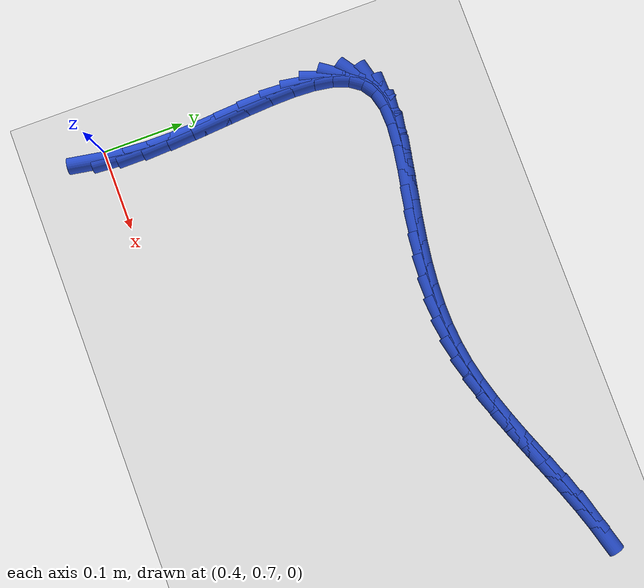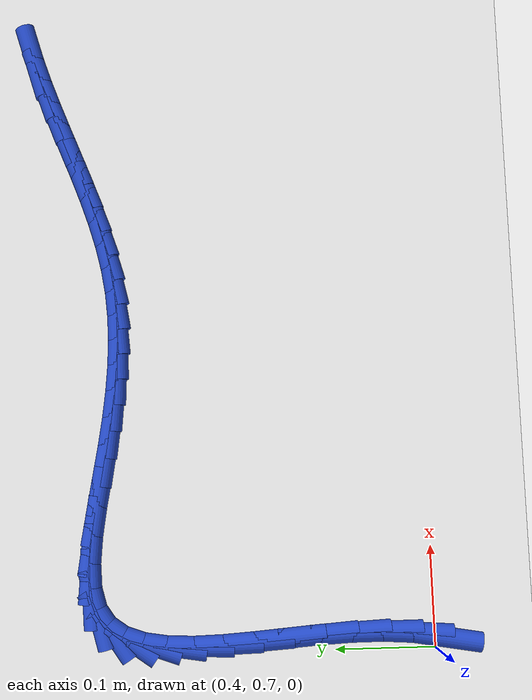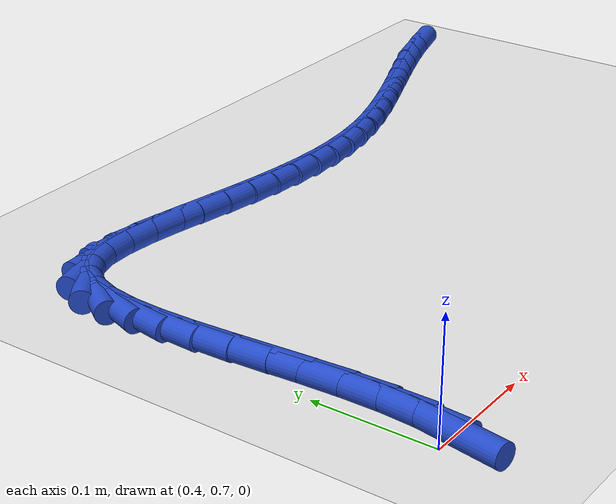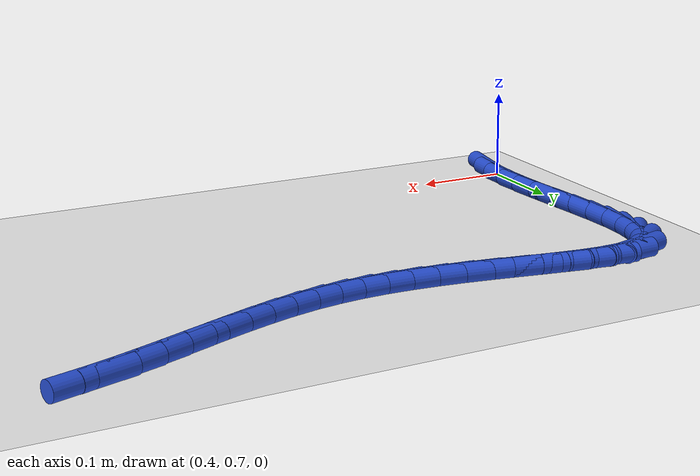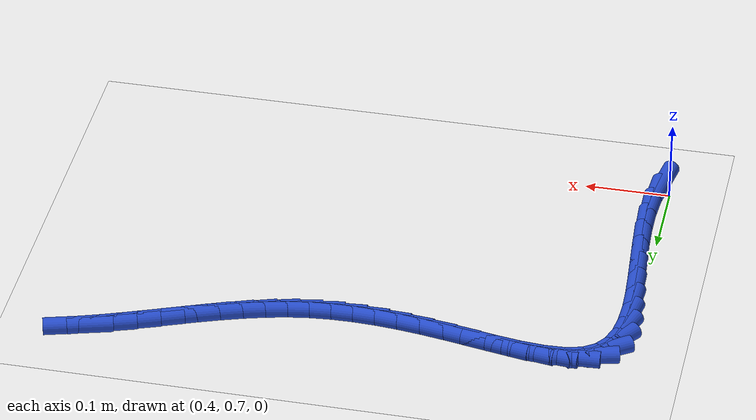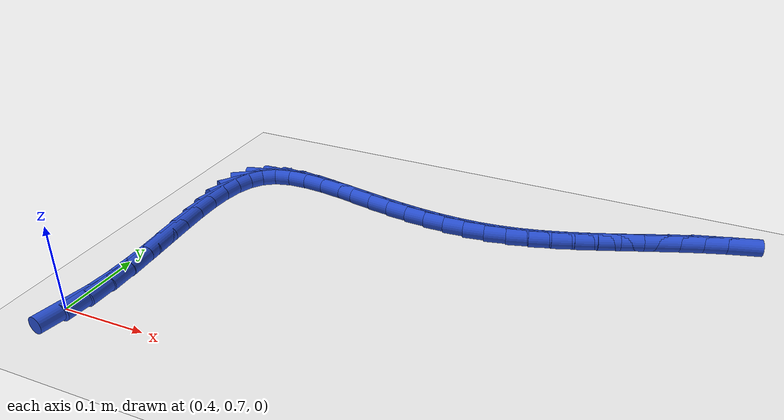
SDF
<sdf version="1.6">
 <world name="default">
  <model name="ground_plane">
   <static>1</static>
   <link name="link">
    <collision name="collision">
     <geometry><plane><normal>0 0 1</normal><size>100 100</size></plane></geometry>
     <surface><friction><ode><mu>100</mu><mu2>50</mu2></ode></friction></surface>
    </collision>
    <visual name="visual">
     <cast_shadows>0</cast_shadows>
     <geometry><plane><normal>0 0 1</normal><size>100 100</size></plane></geometry>
     <material>
      <script><uri>file://media/materials/scripts/gazebo.material</uri><name>Gazebo/WhiteGlow</name></script>
     </material>
    </visual>
   </link>
  </model>
  <model name="line">
   <link name="link_32">
    <pose>0.4114242190296432 0.6948658237087181 0.01 0 1.57 1.4047687014745058</pose>
    <collision name="collision">
     <geometry><cylinder><radius>0.01</radius><length>0.08</length></cylinder></geometry>
    </collision>
    <visual name="visual">
     <material>
      <script><name>Gazebo/Blue</name><uri>file://media/materials/scripts/gazebo.material</uri></script>
     </material>
     <geometry><cylinder><radius>0.01</radius><length>0.08</length></cylinder></geometry>
    </visual>
   </link>
   <link name="link_33">
    <pose>0.41614130437089386 0.723015735806926 0.01 0 1.57 1.5069587871187897</pose>
    <collision name="collision">
     <geometry><cylinder><radius>0.01</radius><length>0.08</length></cylinder></geometry>
    </collision>
    <visual name="visual">
     <material>
      <script><name>Gazebo/Blue</name><uri>file://media/materials/scripts/gazebo.material</uri></script>
     </material>
     <geometry><cylinder><radius>0.01</radius><length>0.08</length></cylinder></geometry>
    </visual>
   </link>
   <link name="link_34">
    <pose>0.41806778920462034 0.7531526611180042 0.01 0 1.57 -1.5646239149254952</pose>
    <collision name="collision">
     <geometry><cylinder><radius>0.01</radius><length>0.08</length></cylinder></geometry>
    </collision>
    <visual name="visual">
     <material>
      <script><name>Gazebo/Blue</name><uri>file://media/materials/scripts/gazebo.material</uri></script>
     </material>
     <geometry><cylinder><radius>0.01</radius><length>0.08</length></cylinder></geometry>
    </visual>
   </link>
   <link name="link_35">
    <pose>0.4178733920678791 0.7846467791533396 0.01 0 1.57 -1.5197703762544845</pose>
    <collision name="collision">
     <geometry><cylinder><radius>0.01</radius><length>0.08</length></cylinder></geometry>
    </collision>
    <visual name="visual">
     <material>
      <script><name>Gazebo/Blue</name><uri>file://media/materials/scripts/gazebo.material</uri></script>
     </material>
     <geometry><cylinder><radius>0.01</radius><length>0.08</length></cylinder></geometry>
    </visual>
   </link>
   <link name="link_36">
    <pose>0.41622783149772635 0.8168682694243189 0.01 0 1.57 -1.495841795573981</pose>
    <collision name="collision">
     <geometry><cylinder><radius>0.01</radius><length>0.08</length></cylinder></geometry>
    </collision>
    <visual name="visual">
     <material>
      <script><name>Gazebo/Blue</name><uri>file://media/materials/scripts/gazebo.material</uri></script>
     </material>
     <geometry><cylinder><radius>0.01</radius><length>0.08</length></cylinder></geometry>
    </visual>
   </link>
   <link name="link_37">
    <pose>0.41380082603121865 0.8491873114423301 0.01 0 1.57 -1.4910979463703196</pose>
    <collision name="collision">
     <geometry><cylinder><radius>0.01</radius><length>0.08</length></cylinder></geometry>
    </collision>
    <visual name="visual">
     <material>
      <script><name>Gazebo/Blue</name><uri>file://media/materials/scripts/gazebo.material</uri></script>
     </material>
     <geometry><cylinder><radius>0.01</radius><length>0.08</length></cylinder></geometry>
    </visual>
   </link>
   <link name="link_38">
    <pose>0.41126209420541204 0.8809740847187592 0.01 0 1.57 -1.506208408278429</pose>
    <collision name="collision">
     <geometry><cylinder><radius>0.01</radius><length>0.08</length></cylinder></geometry>
    </collision>
    <visual name="visual">
     <material>
      <script><name>Gazebo/Blue</name><uri>file://media/materials/scripts/gazebo.material</uri></script>
     </material>
     <geometry><cylinder><radius>0.01</radius><length>0.08</length></cylinder></geometry>
    </visual>
   </link>
   <link name="link_39">
    <pose>0.4092813545573631 0.9115987687649938 0.01 0 1.57 -1.544685145814048</pose>
    <collision name="collision">
     <geometry><cylinder><radius>0.01</radius><length>0.08</length></cylinder></geometry>
    </collision>
    <visual name="visual">
     <material>
      <script><name>Gazebo/Blue</name><uri>file://media/materials/scripts/gazebo.material</uri></script>
     </material>
     <geometry><cylinder><radius>0.01</radius><length>0.08</length></cylinder></geometry>
    </visual>
   </link>
   <link name="link_40">
    <pose>0.40852832562412816 0.9404315430924213 0.01 0 1.57 1.5274930439973453</pose>
    <collision name="collision">
     <geometry><cylinder><radius>0.01</radius><length>0.08</length></cylinder></geometry>
    </collision>
    <visual name="visual">
     <material>
      <script><name>Gazebo/Blue</name><uri>file://media/materials/scripts/gazebo.material</uri></script>
     </material>
     <geometry><cylinder><radius>0.01</radius><length>0.08</length></cylinder></geometry>
    </visual>
   </link>
   <link name="link_41">
    <pose>0.4096727259427635 0.966842587212428 0.01 0 1.57 1.413225290394191</pose>
    <collision name="collision">
     <geometry><cylinder><radius>0.01</radius><length>0.08</length></cylinder></geometry>
    </collision>
    <visual name="visual">
     <material>
      <script><name>Gazebo/Blue</name><uri>file://media/materials/scripts/gazebo.material</uri></script>
     </material>
     <geometry><cylinder><radius>0.01</radius><length>0.08</length></cylinder></geometry>
    </visual>
   </link>
   <link name="link_42">
    <pose>0.4133842740503254 0.9902020806364011 0.01 0 1.57 1.231359349624539</pose>
    <collision name="collision">
     <geometry><cylinder><radius>0.01</radius><length>0.08</length></cylinder></geometry>
    </collision>
    <visual name="visual">
     <material>
      <script><name>Gazebo/Blue</name><uri>file://media/materials/scripts/gazebo.material</uri></script>
     </material>
     <geometry><cylinder><radius>0.01</radius><length>0.08</length></cylinder></geometry>
    </visual>
   </link>
   <link name="link_43">
    <pose>0.4203326884838704 1.0098802028757285 0.01 0 1.57 0.9557966648315243</pose>
    <collision name="collision">
     <geometry><cylinder><radius>0.01</radius><length>0.08</length></cylinder></geometry>
    </collision>
    <visual name="visual">
     <material>
      <script><name>Gazebo/Blue</name><uri>file://media/materials/scripts/gazebo.material</uri></script>
     </material>
     <geometry><cylinder><radius>0.01</radius><length>0.08</length></cylinder></geometry>
    </visual>
   </link>
   <link name="link_44">
    <pose>0.4311876877804547 1.0252471334417965 0.01 0 1.57 0.5942304757525863</pose>
    <collision name="collision">
     <geometry><cylinder><radius>0.01</radius><length>0.08</length></cylinder></geometry>
    </collision>
    <visual name="visual">
     <material>
      <script><name>Gazebo/Blue</name><uri>file://media/materials/scripts/gazebo.material</uri></script>
     </material>
     <geometry><cylinder><radius>0.01</radius><length>0.08</length></cylinder></geometry>
    </visual>
   </link>
   <link name="link_45">
    <pose>0.4466183786808957 1.0356736529023942 0.01 0 1.57 0.25399072506424514</pose>
    <collision name="collision">
     <geometry><cylinder><radius>0.01</radius><length>0.08</length></cylinder></geometry>
    </collision>
    <visual name="visual">
     <material>
      <script><name>Gazebo/Blue</name><uri>file://media/materials/scripts/gazebo.material</uri></script>
     </material>
     <geometry><cylinder><radius>0.01</radius><length>0.08</length></cylinder></geometry>
    </visual>
   </link>
   <link name="link_46">
    <pose>0.46688292376191853 1.0409342720295538 0.01 0 1.57 0.04013133042125194</pose>
    <collision name="collision">
     <geometry><cylinder><radius>0.01</radius><length>0.08</length></cylinder></geometry>
    </collision>
    <visual name="visual">
     <material>
      <script><name>Gazebo/Blue</name><uri>file://media/materials/scripts/gazebo.material</uri></script>
     </material>
     <geometry><cylinder><radius>0.01</radius><length>0.08</length></cylinder></geometry>
    </visual>
   </link>
   <link name="link_47">
    <pose>0.4911159655974157 1.0419072986554676 0.01 0 1.57 -0.08267206849056742</pose>
    <collision name="collision">
     <geometry><cylinder><radius>0.01</radius><length>0.08</length></cylinder></geometry>
    </collision>
    <visual name="visual">
     <material>
      <script><name>Gazebo/Blue</name><uri>file://media/materials/scripts/gazebo.material</uri></script>
     </material>
     <geometry><cylinder><radius>0.01</radius><length>0.08</length></cylinder></geometry>
    </visual>
   </link>
   <link name="link_48">
    <pose>0.5182618848717185 1.03965796253079 0.01 0 1.57 -0.1507774937795021</pose>
    <collision name="collision">
     <geometry><cylinder><radius>0.01</radius><length>0.08</length></cylinder></geometry>
    </collision>
    <visual name="visual">
     <material>
      <script><name>Gazebo/Blue</name><uri>file://media/materials/scripts/gazebo.material</uri></script>
     </material>
     <geometry><cylinder><radius>0.01</radius><length>0.08</length></cylinder></geometry>
    </visual>
   </link>
   <link name="link_49">
    <pose>0.5472650622691572 1.0352514934061745 0.01 0 1.57 -0.182428274732098</pose>
    <collision name="collision">
     <geometry><cylinder><radius>0.01</radius><length>0.08</length></cylinder></geometry>
    </collision>
    <visual name="visual">
     <material>
      <script><name>Gazebo/Blue</name><uri>file://media/materials/scripts/gazebo.material</uri></script>
     </material>
     <geometry><cylinder><radius>0.01</radius><length>0.08</length></cylinder></geometry>
    </visual>
   </link>
   <link name="link_50">
    <pose>0.5770698784740633 1.029753121032276 0.01 0 1.57 -0.18483875823163884</pose>
    <collision name="collision">
     <geometry><cylinder><radius>0.01</radius><length>0.08</length></cylinder></geometry>
    </collision>
    <visual name="visual">
     <material>
      <script><name>Gazebo/Blue</name><uri>file://media/materials/scripts/gazebo.material</uri></script>
     </material>
     <geometry><cylinder><radius>0.01</radius><length>0.08</length></cylinder></geometry>
    </visual>
   </link>
   <link name="link_51">
    <pose>0.6066210005369806 1.0242278603505293 0.01 0 1.57 -0.16321358004310377</pose>
    <collision name="collision">
     <geometry><cylinder><radius>0.01</radius><length>0.08</length></cylinder></geometry>
    </collision>
    <visual name="visual">
     <material>
      <script><name>Gazebo/Blue</name><uri>file://media/materials/scripts/gazebo.material</uri></script>
     </material>
     <geometry><cylinder><radius>0.01</radius><length>0.08</length></cylinder></geometry>
    </visual>
   </link>
   <link name="link_52">
    <pose>0.6351427653393129 1.0195309401793358 0.01 0 1.57 -0.13062801544047986</pose>
    <collision name="collision">
     <geometry><cylinder><radius>0.01</radius><length>0.08</length></cylinder></geometry>
    </collision>
    <visual name="visual">
     <material>
      <script><name>Gazebo/Blue</name><uri>file://media/materials/scripts/gazebo.material</uri></script>
     </material>
     <geometry><cylinder><radius>0.01</radius><length>0.08</length></cylinder></geometry>
    </visual>
   </link>
   <link name="link_53">
    <pose>0.6626620887552457 1.0159155582391808 0.01 0 1.57 -0.089243317171403</pose>
    <collision name="collision">
     <geometry><cylinder><radius>0.01</radius><length>0.08</length></cylinder></geometry>
    </collision>
    <visual name="visual">
     <material>
      <script><name>Gazebo/Blue</name><uri>file://media/materials/scripts/gazebo.material</uri></script>
     </material>
     <geometry><cylinder><radius>0.01</radius><length>0.08</length></cylinder></geometry>
    </visual>
   </link>
   <link name="link_54">
    <pose>0.6893489593583562 1.0135275904603351 0.01 0 1.57 -0.03896972625812718</pose>
    <collision name="collision">
     <geometry><cylinder><radius>0.01</radius><length>0.08</length></cylinder></geometry>
    </collision>
    <visual name="visual">
     <material>
      <script><name>Gazebo/Blue</name><uri>file://media/materials/scripts/gazebo.material</uri></script>
     </material>
     <geometry><cylinder><radius>0.01</radius><length>0.08</length></cylinder></geometry>
    </visual>
   </link>
   <link name="link_55">
    <pose>0.7153733657222208 1.0125129127730679 0.01 0 1.57 0.019756543340623465</pose>
    <collision name="collision">
     <geometry><cylinder><radius>0.01</radius><length>0.08</length></cylinder></geometry>
    </collision>
    <visual name="visual">
     <material>
      <script><name>Gazebo/Blue</name><uri>file://media/materials/scripts/gazebo.material</uri></script>
     </material>
     <geometry><cylinder><radius>0.01</radius><length>0.08</length></cylinder></geometry>
    </visual>
   </link>
   <link name="link_56">
    <pose>0.7409052964204158 1.0130174011076492 0.01 0 1.57 0.08584869576111889</pose>
    <collision name="collision">
     <geometry><cylinder><radius>0.01</radius><length>0.08</length></cylinder></geometry>
    </collision>
    <visual name="visual">
     <material>
      <script><name>Gazebo/Blue</name><uri>file://media/materials/scripts/gazebo.material</uri></script>
     </material>
     <geometry><cylinder><radius>0.01</radius><length>0.08</length></cylinder></geometry>
    </visual>
   </link>
   <link name="link_57">
    <pose>0.766114740026518 1.0151869313943487 0.01 0 1.57 0.15749196918500613</pose>
    <collision name="collision">
     <geometry><cylinder><radius>0.01</radius><length>0.08</length></cylinder></geometry>
    </collision>
    <visual name="visual">
     <material>
      <script><name>Gazebo/Blue</name><uri>file://media/materials/scripts/gazebo.material</uri></script>
     </material>
     <geometry><cylinder><radius>0.01</radius><length>0.08</length></cylinder></geometry>
    </visual>
   </link>
   <link name="link_58">
    <pose>0.7911712703358393 1.0191660875160948 0.01 0 1.57 0.22706755578521565</pose>
    <collision name="collision">
     <geometry><cylinder><radius>0.01</radius><length>0.08</length></cylinder></geometry>
    </collision>
    <visual name="visual">
     <material>
      <script><name>Gazebo/Blue</name><uri>file://media/materials/scripts/gazebo.material</uri></script>
     </material>
     <geometry><cylinder><radius>0.01</radius><length>0.08</length></cylinder></geometry>
    </visual>
   </link>
   <link name="link_59">
    <pose>0.8161958656858561 1.0249480769758832 0.01 0 1.57 0.28339389213689253</pose>
    <collision name="collision">
     <geometry><cylinder><radius>0.01</radius><length>0.08</length></cylinder></geometry>
    </collision>
    <visual name="visual">
     <material>
      <script><name>Gazebo/Blue</name><uri>file://media/materials/scripts/gazebo.material</uri></script>
     </material>
     <geometry><cylinder><radius>0.01</radius><length>0.08</length></cylinder></geometry>
    </visual>
   </link>
   <link name="link_60">
    <pose>0.8412159695468947 1.0322347432230126 0.01 0 1.57 0.3259129243356896</pose>
    <collision name="collision">
     <geometry><cylinder><radius>0.01</radius><length>0.08</length></cylinder></geometry>
    </collision>
    <visual name="visual">
     <material>
      <script><name>Gazebo/Blue</name><uri>file://media/materials/scripts/gazebo.material</uri></script>
     </material>
     <geometry><cylinder><radius>0.01</radius><length>0.08</length></cylinder></geometry>
    </visual>
   </link>
   <link name="link_61">
    <pose>0.8662483957931252 1.040694818180352 0.01 0 1.57 0.3554126896417086</pose>
    <collision name="collision">
     <geometry><cylinder><radius>0.01</radius><length>0.08</length></cylinder></geometry>
    </collision>
    <visual name="visual">
     <material>
      <script><name>Gazebo/Blue</name><uri>file://media/materials/scripts/gazebo.material</uri></script>
     </material>
     <geometry><cylinder><radius>0.01</radius><length>0.08</length></cylinder></geometry>
    </visual>
   </link>
   <link name="link_62">
    <pose>0.8913099582987158 1.0499970337707702 0.01 0 1.57 0.37258731606013756</pose>
    <collision name="collision">
     <geometry><cylinder><radius>0.01</radius><length>0.08</length></cylinder></geometry>
    </collision>
    <visual name="visual">
     <material>
      <script><name>Gazebo/Blue</name><uri>file://media/materials/scripts/gazebo.material</uri></script>
     </material>
     <geometry><cylinder><radius>0.01</radius><length>0.08</length></cylinder></geometry>
    </visual>
   </link>
   <link name="link_63">
    <pose>0.9164174709378362 1.0598101219171359 0.01 0 1.57 0.37792068263176093</pose>
    <collision name="collision">
     <geometry><cylinder><radius>0.01</radius><length>0.08</length></cylinder></geometry>
    </collision>
    <visual name="visual">
     <material>
      <script><name>Gazebo/Blue</name><uri>file://media/materials/scripts/gazebo.material</uri></script>
     </material>
     <geometry><cylinder><radius>0.01</radius><length>0.08</length></cylinder></geometry>
    </visual>
   </link>
   <link name="link_64">
    <pose>0.941587747584655 1.0698028145423184 0.01 0 1.57 0.37163556123159014</pose>
    <collision name="collision">
     <geometry><cylinder><radius>0.01</radius><length>0.08</length></cylinder></geometry>
    </collision>
    <visual name="visual">
     <material>
      <script><name>Gazebo/Blue</name><uri>file://media/materials/scripts/gazebo.material</uri></script>
     </material>
     <geometry><cylinder><radius>0.01</radius><length>0.08</length></cylinder></geometry>
    </visual>
   </link>
   <link name="link_65">
    <pose>0.9668376021133415 1.0796438435691862 0.01 0 1.57 0.3536852074107787</pose>
    <collision name="collision">
     <geometry><cylinder><radius>0.01</radius><length>0.08</length></cylinder></geometry>
    </collision>
    <visual name="visual">
     <material>
      <script><name>Gazebo/Blue</name><uri>file://media/materials/scripts/gazebo.material</uri></script>
     </material>
     <geometry><cylinder><radius>0.01</radius><length>0.08</length></cylinder></geometry>
    </visual>
   </link>
   <link name="link_66">
    <pose>0.9921838483980653 1.0890019409206082 0.01 0 1.57 0.3237787700720862</pose>
    <collision name="collision">
     <geometry><cylinder><radius>0.01</radius><length>0.08</length></cylinder></geometry>
    </collision>
    <visual name="visual">
     <material>
      <script><name>Gazebo/Blue</name><uri>file://media/materials/scripts/gazebo.material</uri></script>
     </material>
     <geometry><cylinder><radius>0.01</radius><length>0.08</length></cylinder></geometry>
    </visual>
   </link>
   <link name="link_67">
    <pose>1.0176433003129945 1.0975458385194532 0.01 0 1.57 0.2814455624364506</pose>
    <collision name="collision">
     <geometry><cylinder><radius>0.01</radius><length>0.08</length></cylinder></geometry>
    </collision>
    <visual name="visual">
     <material>
      <script><name>Gazebo/Blue</name><uri>file://media/materials/scripts/gazebo.material</uri></script>
     </material>
     <geometry><cylinder><radius>0.01</radius><length>0.08</length></cylinder></geometry>
    </visual>
   </link>
  </model>
 </world>
</sdf>
